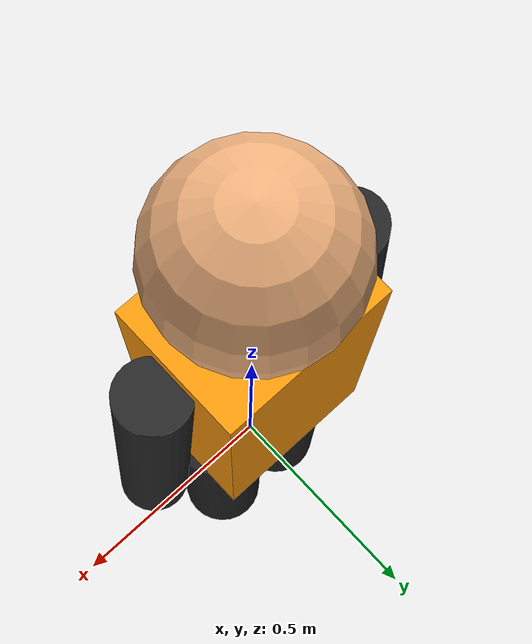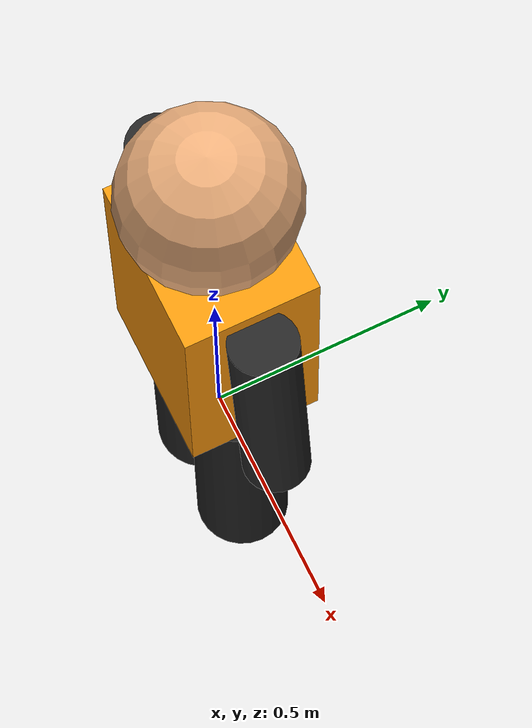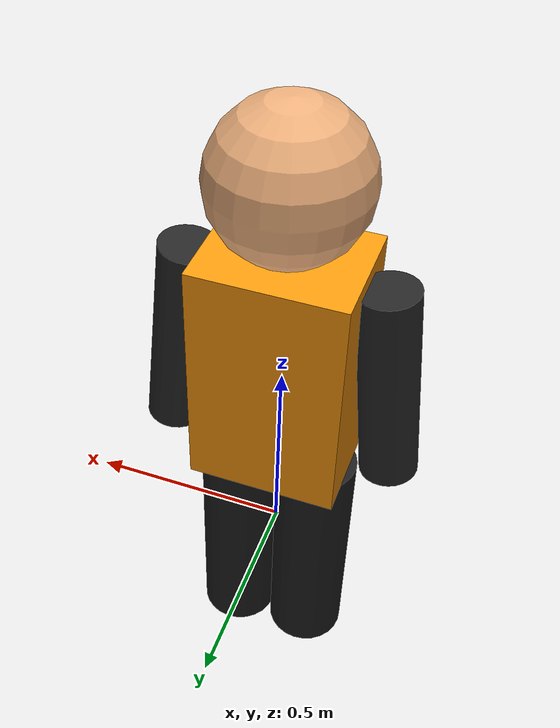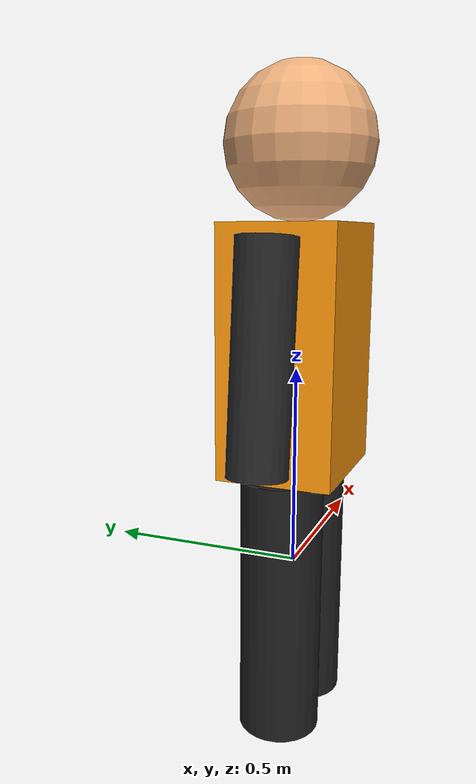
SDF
<?xml version="1.0"?>
<sdf version="1.6">
  <model name="cleannav_demo_dynamic_obstacle">
    <static>false</static>
    <allow_auto_disable>false</allow_auto_disable>
    <link name="link">
      <gravity>false</gravity>
      <kinematic>true</kinematic>
      <inertial>
        <mass>8.0</mass>
        <inertia>
          <ixx>0.50</ixx>
          <ixy>0.0</ixy>
          <ixz>0.0</ixz>
          <iyy>0.50</iyy>
          <iyz>0.0</iyz>
          <izz>0.50</izz>
        </inertia>
      </inertial>
      <collision name="collision">
        <geometry>
          <box>
            <size>0.65 0.65 0.80</size>
          </box>
        </geometry>
      </collision>
      <visual name="visual_left_leg">
        <pose>-0.10 0 -0.075 0 0 0</pose>
        <geometry>
          <cylinder>
            <radius>0.10</radius>
            <length>0.65</length>
          </cylinder>
        </geometry>
        <material>
          <ambient>0.08 0.08 0.08 1</ambient>
          <diffuse>0.12 0.12 0.12 1</diffuse>
        </material>
      </visual>
      <visual name="visual_right_leg">
        <pose>0.10 0 -0.075 0 0 0</pose>
        <geometry>
          <cylinder>
            <radius>0.10</radius>
            <length>0.65</length>
          </cylinder>
        </geometry>
        <material>
          <ambient>0.08 0.08 0.08 1</ambient>
          <diffuse>0.12 0.12 0.12 1</diffuse>
        </material>
      </visual>
      <visual name="visual_torso">
        <pose>0 0 0.55 0 0 0</pose>
        <geometry>
          <box>
            <size>0.36 0.28 0.60</size>
          </box>
        </geometry>
        <material>
          <ambient>0.95 0.45 0.03 1</ambient>
          <diffuse>1.0 0.60 0.05 1</diffuse>
        </material>
      </visual>
      <visual name="visual_head">
        <pose>0 0 1.03 0 0 0</pose>
        <geometry>
          <sphere>
            <radius>0.18</radius>
          </sphere>
        </geometry>
        <material>
          <ambient>0.76 0.52 0.34 1</ambient>
          <diffuse>0.92 0.68 0.48 1</diffuse>
        </material>
      </visual>
      <visual name="visual_left_arm">
        <pose>-0.25 0 0.56 0 0.10 0</pose>
        <geometry>
          <cylinder>
            <radius>0.07</radius>
            <length>0.52</length>
          </cylinder>
        </geometry>
        <material>
          <ambient>0.08 0.08 0.08 1</ambient>
          <diffuse>0.15 0.15 0.15 1</diffuse>
        </material>
      </visual>
      <visual name="visual_right_arm">
        <pose>0.25 0 0.56 0 -0.10 0</pose>
        <geometry>
          <cylinder>
            <radius>0.07</radius>
            <length>0.52</length>
          </cylinder>
        </geometry>
        <material>
          <ambient>0.08 0.08 0.08 1</ambient>
          <diffuse>0.15 0.15 0.15 1</diffuse>
        </material>
      </visual>
    </link>
  </model>
</sdf>
